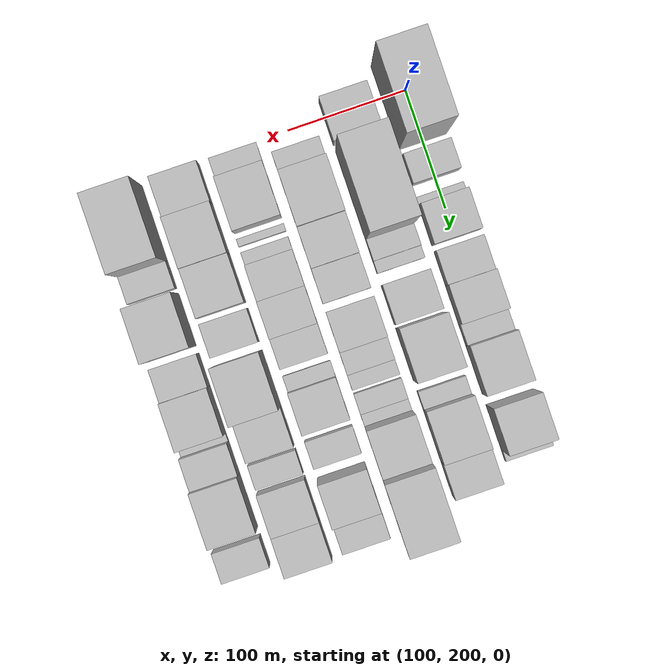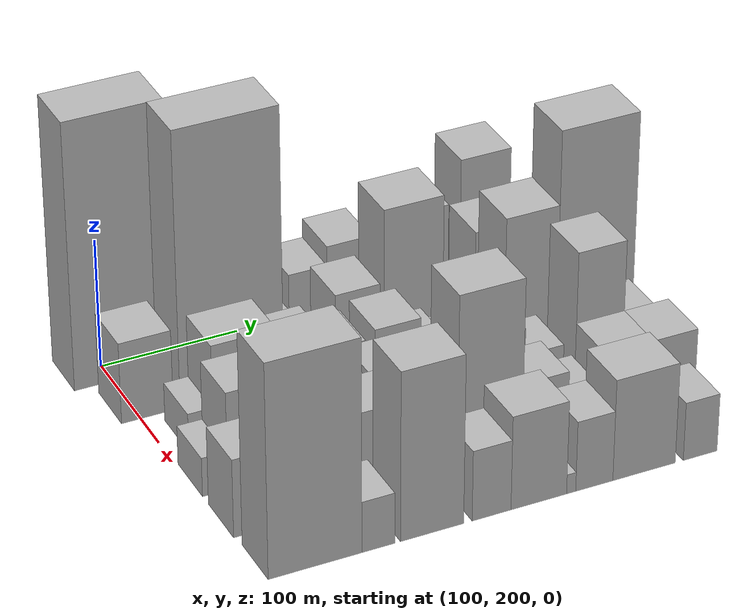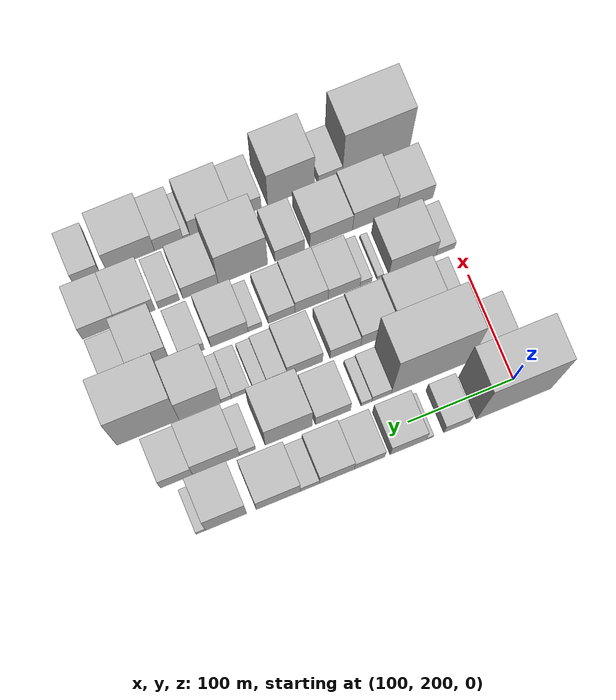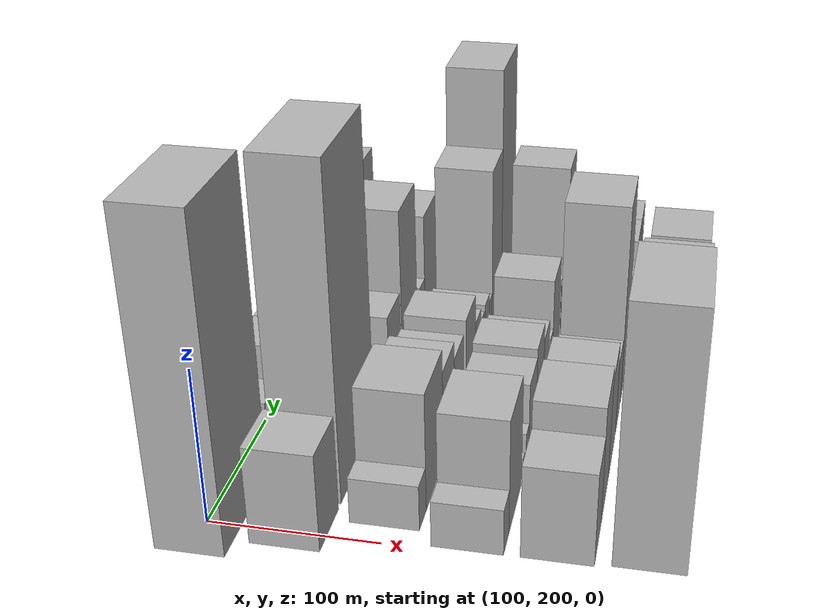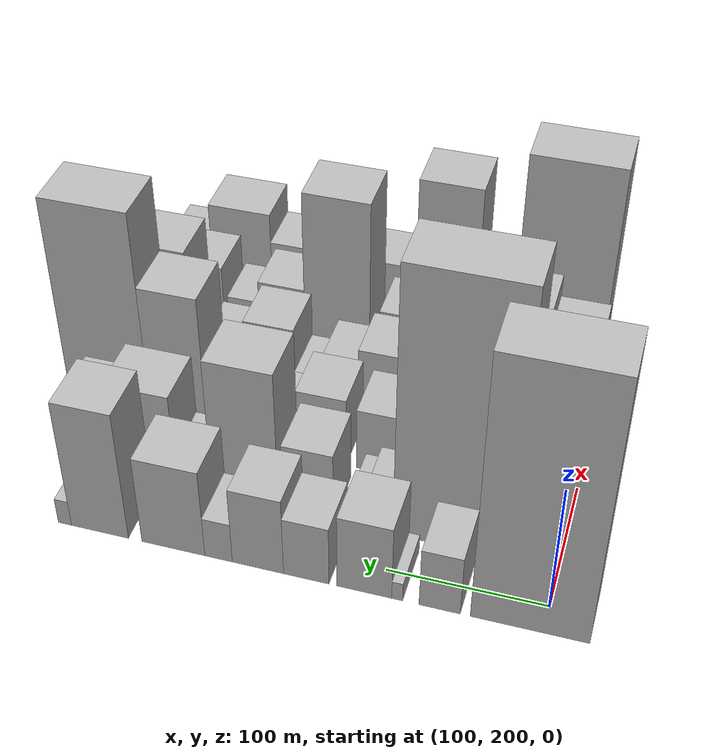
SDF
<sdf version="1.6">
 <world name="default">
  <model name="building_29">
   <static>1</static>
   <pose>100.0000 208.2416 0 0.000000 0.000000 0.000000</pose>
   <link name="link">
    <pose>0 0 103.50 0 0 0</pose>
    <collision name="collision"><geometry><box><size>40.0000 70.6594 207.0000</size></box></geometry></collision>
    <visual name="visual">
     <cast_shadows>0</cast_shadows>
     <geometry><box><size>40.0000 70.6594 207.0000</size></box></geometry>
     <material>
      <script>
       <uri>model://HANNAS_wall/materials/scripts</uri>
       <uri>model://HANNAS_wall/materials/textures</uri>
       <name>vrc/HANNAS_wall</name>
      </script>
     </material>
    </visual>
   </link>
  </model>
  <model name="building_30">
   <static>1</static>
   <pose>100.0000 262.0798 0 0.000000 0.000000 0.000000</pose>
   <link name="link">
    <pose>0 0 24.00 0 0 0</pose>
    <collision name="collision"><geometry><box><size>40.0000 25.0170 48.0000</size></box></geometry></collision>
    <visual name="visual">
     <cast_shadows>0</cast_shadows>
     <geometry><box><size>40.0000 25.0170 48.0000</size></box></geometry>
     <material>
      <script>
       <uri>model://HANNAS_wall/materials/scripts</uri>
       <uri>model://HANNAS_wall/materials/textures</uri>
       <name>vrc/HANNAS_wall</name>
      </script>
     </material>
    </visual>
   </link>
  </model>
  <model name="building_31">
   <static>1</static>
   <pose>100.0000 287.9482 0 0.000000 0.000000 0.000000</pose>
   <link name="link">
    <pose>0 0 7.50 0 0 0</pose>
    <collision name="collision"><geometry><box><size>40.0000 6.7198 15.0000</size></box></geometry></collision>
    <visual name="visual">
     <cast_shadows>0</cast_shadows>
     <geometry><box><size>40.0000 6.7198 15.0000</size></box></geometry>
     <material>
      <script>
       <uri>model://HANNAS_wall/materials/scripts</uri>
       <uri>model://HANNAS_wall/materials/textures</uri>
       <name>vrc/HANNAS_wall</name>
      </script>
     </material>
    </visual>
   </link>
  </model>
  <model name="building_32">
   <static>1</static>
   <pose>100.0000 308.2810 0 0.000000 0.000000 0.000000</pose>
   <link name="link">
    <pose>0 0 30.00 0 0 0</pose>
    <collision name="collision"><geometry><box><size>40.0000 33.9458 60.0000</size></box></geometry></collision>
    <visual name="visual">
     <cast_shadows>0</cast_shadows>
     <geometry><box><size>40.0000 33.9458 60.0000</size></box></geometry>
     <material>
      <script>
       <uri>model://HANNAS_wall/materials/scripts</uri>
       <uri>model://HANNAS_wall/materials/textures</uri>
       <name>vrc/HANNAS_wall</name>
      </script>
     </material>
    </visual>
   </link>
  </model>
  <model name="building_33">
   <static>1</static>
   <pose>100.0000 344.5933 0 0.000000 0.000000 0.000000</pose>
   <link name="link">
    <pose>0 0 24.00 0 0 0</pose>
    <collision name="collision"><geometry><box><size>40.0000 28.6788 48.0000</size></box></geometry></collision>
    <visual name="visual">
     <cast_shadows>0</cast_shadows>
     <geometry><box><size>40.0000 28.6788 48.0000</size></box></geometry>
     <material>
      <script>
       <uri>model://HANNAS_wall/materials/scripts</uri>
       <uri>model://HANNAS_wall/materials/textures</uri>
       <name>vrc/HANNAS_wall</name>
      </script>
     </material>
    </visual>
   </link>
  </model>
  <model name="building_34">
   <static>1</static>
   <pose>100.0000 375.3645 0 0.000000 0.000000 0.000000</pose>
   <link name="link">
    <pose>0 0 31.50 0 0 0</pose>
    <collision name="collision"><geometry><box><size>40.0000 32.8637 63.0000</size></box></geometry></collision>
    <visual name="visual">
     <cast_shadows>0</cast_shadows>
     <geometry><box><size>40.0000 32.8637 63.0000</size></box></geometry>
     <material>
      <script>
       <uri>model://HANNAS_wall/materials/scripts</uri>
       <uri>model://HANNAS_wall/materials/textures</uri>
       <name>vrc/HANNAS_wall</name>
      </script>
     </material>
    </visual>
   </link>
  </model>
  <model name="building_35">
   <static>1</static>
   <pose>100.0000 400.6702 0 0.000000 0.000000 0.000000</pose>
   <link name="link">
    <pose>0 0 16.50 0 0 0</pose>
    <collision name="collision"><geometry><box><size>40.0000 17.7477 33.0000</size></box></geometry></collision>
    <visual name="visual">
     <cast_shadows>0</cast_shadows>
     <geometry><box><size>40.0000 17.7477 33.0000</size></box></geometry>
     <material>
      <script>
       <uri>model://HANNAS_wall/materials/scripts</uri>
       <uri>model://HANNAS_wall/materials/textures</uri>
       <name>vrc/HANNAS_wall</name>
      </script>
     </material>
    </visual>
   </link>
  </model>
  <model name="building_36">
   <static>1</static>
   <pose>100.0000 430.2554 0 0.000000 0.000000 0.000000</pose>
   <link name="link">
    <pose>0 0 36.00 0 0 0</pose>
    <collision name="collision"><geometry><box><size>40.0000 41.4226 72.0000</size></box></geometry></collision>
    <visual name="visual">
     <cast_shadows>0</cast_shadows>
     <geometry><box><size>40.0000 41.4226 72.0000</size></box></geometry>
     <material>
      <script>
       <uri>model://HANNAS_wall/materials/scripts</uri>
       <uri>model://HANNAS_wall/materials/textures</uri>
       <name>vrc/HANNAS_wall</name>
      </script>
     </material>
    </visual>
   </link>
  </model>
  <model name="building_37">
   <static>1</static>
   <pose>100.0000 479.1177 0 0.000000 0.000000 0.000000</pose>
   <link name="link">
    <pose>0 0 52.50 0 0 0</pose>
    <collision name="collision"><geometry><box><size>40.0000 38.3021 105.0000</size></box></geometry></collision>
    <visual name="visual">
     <cast_shadows>0</cast_shadows>
     <geometry><box><size>40.0000 38.3021 105.0000</size></box></geometry>
     <material>
      <script>
       <uri>model://HANNAS_wall/materials/scripts</uri>
       <uri>model://HANNAS_wall/materials/textures</uri>
       <name>vrc/HANNAS_wall</name>
      </script>
     </material>
    </visual>
   </link>
  </model>
  <model name="building_38">
   <static>1</static>
   <pose>100.0000 502.7300 0 0.000000 0.000000 0.000000</pose>
   <link name="link">
    <pose>0 0 10.50 0 0 0</pose>
    <collision name="collision"><geometry><box><size>40.0000 8.9223 21.0000</size></box></geometry></collision>
    <visual name="visual">
     <cast_shadows>0</cast_shadows>
     <geometry><box><size>40.0000 8.9223 21.0000</size></box></geometry>
     <material>
      <script>
       <uri>model://HANNAS_wall/materials/scripts</uri>
       <uri>model://HANNAS_wall/materials/textures</uri>
       <name>vrc/HANNAS_wall</name>
      </script>
     </material>
    </visual>
   </link>
  </model>
  <model name="building_72">
   <static>1</static>
   <pose>149.0000 205.1506 0 0.000000 0.000000 0.000000</pose>
   <link name="link">
    <pose>0 0 31.50 0 0 0</pose>
    <collision name="collision"><geometry><box><size>40.0000 36.9311 63.0000</size></box></geometry></collision>
    <visual name="visual">
     <cast_shadows>0</cast_shadows>
     <geometry><box><size>40.0000 36.9311 63.0000</size></box></geometry>
     <material>
      <script>
       <uri>model://HANNAS_wall/materials/scripts</uri>
       <uri>model://HANNAS_wall/materials/textures</uri>
       <name>vrc/HANNAS_wall</name>
      </script>
     </material>
    </visual>
   </link>
  </model>
  <model name="building_73">
   <static>1</static>
   <pose>149.0000 266.2312 0 0.000000 0.000000 0.000000</pose>
   <link name="link">
    <pose>0 0 106.50 0 0 0</pose>
    <collision name="collision"><geometry><box><size>40.0000 75.2303 213.0000</size></box></geometry></collision>
    <visual name="visual">
     <cast_shadows>0</cast_shadows>
     <geometry><box><size>40.0000 75.2303 213.0000</size></box></geometry>
     <material>
      <script>
       <uri>model://HANNAS_wall/materials/scripts</uri>
       <uri>model://HANNAS_wall/materials/textures</uri>
       <name>vrc/HANNAS_wall</name>
      </script>
     </material>
    </visual>
   </link>
  </model>
  <model name="building_74">
   <static>1</static>
   <pose>149.0000 312.9829 0 0.000000 0.000000 0.000000</pose>
   <link name="link">
    <pose>0 0 16.50 0 0 0</pose>
    <collision name="collision"><geometry><box><size>40.0000 18.2730 33.0000</size></box></geometry></collision>
    <visual name="visual">
     <cast_shadows>0</cast_shadows>
     <geometry><box><size>40.0000 18.2730 33.0000</size></box></geometry>
     <material>
      <script>
       <uri>model://HANNAS_wall/materials/scripts</uri>
       <uri>model://HANNAS_wall/materials/textures</uri>
       <name>vrc/HANNAS_wall</name>
      </script>
     </material>
    </visual>
   </link>
  </model>
  <model name="building_75">
   <static>1</static>
   <pose>149.0000 327.2028 0 0.000000 0.000000 0.000000</pose>
   <link name="link">
    <pose>0 0 12.00 0 0 0</pose>
    <collision name="collision"><geometry><box><size>40.0000 10.1668 24.0000</size></box></geometry></collision>
    <visual name="visual">
     <cast_shadows>0</cast_shadows>
     <geometry><box><size>40.0000 10.1668 24.0000</size></box></geometry>
     <material>
      <script>
       <uri>model://HANNAS_wall/materials/scripts</uri>
       <uri>model://HANNAS_wall/materials/textures</uri>
       <name>vrc/HANNAS_wall</name>
      </script>
     </material>
    </visual>
   </link>
  </model>
  <model name="building_76">
   <static>1</static>
   <pose>149.0000 358.7865 0 0.000000 0.000000 0.000000</pose>
   <link name="link">
    <pose>0 0 28.50 0 0 0</pose>
    <collision name="collision"><geometry><box><size>40.0000 33.0005 57.0000</size></box></geometry></collision>
    <visual name="visual">
     <cast_shadows>0</cast_shadows>
     <geometry><box><size>40.0000 33.0005 57.0000</size></box></geometry>
     <material>
      <script>
       <uri>model://HANNAS_wall/materials/scripts</uri>
       <uri>model://HANNAS_wall/materials/textures</uri>
       <name>vrc/HANNAS_wall</name>
      </script>
     </material>
    </visual>
   </link>
  </model>
  <model name="building_77">
   <static>1</static>
   <pose>149.0000 400.4650 0 0.000000 0.000000 0.000000</pose>
   <link name="link">
    <pose>0 0 57.00 0 0 0</pose>
    <collision name="collision"><geometry><box><size>40.0000 44.3565 114.0000</size></box></geometry></collision>
    <visual name="visual">
     <cast_shadows>0</cast_shadows>
     <geometry><box><size>40.0000 44.3565 114.0000</size></box></geometry>
     <material>
      <script>
       <uri>model://HANNAS_wall/materials/scripts</uri>
       <uri>model://HANNAS_wall/materials/textures</uri>
       <name>vrc/HANNAS_wall</name>
      </script>
     </material>
    </visual>
   </link>
  </model>
  <model name="building_78">
   <static>1</static>
   <pose>149.0000 439.2201 0 0.000000 0.000000 0.000000</pose>
   <link name="link">
    <pose>0 0 15.00 0 0 0</pose>
    <collision name="collision"><geometry><box><size>40.0000 15.1538 30.0000</size></box></geometry></collision>
    <visual name="visual">
     <cast_shadows>0</cast_shadows>
     <geometry><box><size>40.0000 15.1538 30.0000</size></box></geometry>
     <material>
      <script>
       <uri>model://HANNAS_wall/materials/scripts</uri>
       <uri>model://HANNAS_wall/materials/textures</uri>
       <name>vrc/HANNAS_wall</name>
      </script>
     </material>
    </visual>
   </link>
  </model>
  <model name="building_79">
   <static>1</static>
   <pose>149.0000 468.7493 0 0.000000 0.000000 0.000000</pose>
   <link name="link">
    <pose>0 0 39.00 0 0 0</pose>
    <collision name="collision"><geometry><box><size>40.0000 43.9047 78.0000</size></box></geometry></collision>
    <visual name="visual">
     <cast_shadows>0</cast_shadows>
     <geometry><box><size>40.0000 43.9047 78.0000</size></box></geometry>
     <material>
      <script>
       <uri>model://HANNAS_wall/materials/scripts</uri>
       <uri>model://HANNAS_wall/materials/textures</uri>
       <name>vrc/HANNAS_wall</name>
      </script>
     </material>
    </visual>
   </link>
  </model>
  <model name="building_80">
   <static>1</static>
   <pose>149.0000 505.7298 0 0.000000 0.000000 0.000000</pose>
   <link name="link">
    <pose>0 0 30.00 0 0 0</pose>
    <collision name="collision"><geometry><box><size>40.0000 30.0564 60.0000</size></box></geometry></collision>
    <visual name="visual">
     <cast_shadows>0</cast_shadows>
     <geometry><box><size>40.0000 30.0564 60.0000</size></box></geometry>
     <material>
      <script>
       <uri>model://HANNAS_wall/materials/scripts</uri>
       <uri>model://HANNAS_wall/materials/textures</uri>
       <name>vrc/HANNAS_wall</name>
      </script>
     </material>
    </visual>
   </link>
  </model>
  <model name="building_125">
   <static>1</static>
   <pose>198.0000 222.5570 0 0.000000 0.000000 0.000000</pose>
   <link name="link">
    <pose>0 0 15.00 0 0 0</pose>
    <collision name="collision"><geometry><box><size>40.0000 17.4681 30.0000</size></box></geometry></collision>
    <visual name="visual">
     <cast_shadows>0</cast_shadows>
     <geometry><box><size>40.0000 17.4681 30.0000</size></box></geometry>
     <material>
      <script>
       <uri>model://HANNAS_wall/materials/scripts</uri>
       <uri>model://HANNAS_wall/materials/textures</uri>
       <name>vrc/HANNAS_wall</name>
      </script>
     </material>
    </visual>
   </link>
  </model>
  <model name="building_126">
   <static>1</static>
   <pose>198.0000 254.6107 0 0.000000 0.000000 0.000000</pose>
   <link name="link">
    <pose>0 0 39.00 0 0 0</pose>
    <collision name="collision"><geometry><box><size>40.0000 46.6393 78.0000</size></box></geometry></collision>
    <visual name="visual">
     <cast_shadows>0</cast_shadows>
     <geometry><box><size>40.0000 46.6393 78.0000</size></box></geometry>
     <material>
      <script>
       <uri>model://HANNAS_wall/materials/scripts</uri>
       <uri>model://HANNAS_wall/materials/textures</uri>
       <name>vrc/HANNAS_wall</name>
      </script>
     </material>
    </visual>
   </link>
  </model>
  <model name="building_127">
   <static>1</static>
   <pose>198.0000 295.1061 0 0.000000 0.000000 0.000000</pose>
   <link name="link">
    <pose>0 0 31.50 0 0 0</pose>
    <collision name="collision"><geometry><box><size>40.0000 34.3516 63.0000</size></box></geometry></collision>
    <visual name="visual">
     <cast_shadows>0</cast_shadows>
     <geometry><box><size>40.0000 34.3516 63.0000</size></box></geometry>
     <material>
      <script>
       <uri>model://HANNAS_wall/materials/scripts</uri>
       <uri>model://HANNAS_wall/materials/textures</uri>
       <name>vrc/HANNAS_wall</name>
      </script>
     </material>
    </visual>
   </link>
  </model>
  <model name="building_128">
   <static>1</static>
   <pose>198.0000 326.7949 0 0.000000 0.000000 0.000000</pose>
   <link name="link">
    <pose>0 0 25.50 0 0 0</pose>
    <collision name="collision"><geometry><box><size>40.0000 29.0258 51.0000</size></box></geometry></collision>
    <visual name="visual">
     <cast_shadows>0</cast_shadows>
     <geometry><box><size>40.0000 29.0258 51.0000</size></box></geometry>
     <material>
      <script>
       <uri>model://HANNAS_wall/materials/scripts</uri>
       <uri>model://HANNAS_wall/materials/textures</uri>
       <name>vrc/HANNAS_wall</name>
      </script>
     </material>
    </visual>
   </link>
  </model>
  <model name="building_129">
   <static>1</static>
   <pose>198.0000 365.1813 0 0.000000 0.000000 0.000000</pose>
   <link name="link">
    <pose>0 0 28.50 0 0 0</pose>
    <collision name="collision"><geometry><box><size>40.0000 33.7472 57.0000</size></box></geometry></collision>
    <visual name="visual">
     <cast_shadows>0</cast_shadows>
     <geometry><box><size>40.0000 33.7472 57.0000</size></box></geometry>
     <material>
      <script>
       <uri>model://HANNAS_wall/materials/scripts</uri>
       <uri>model://HANNAS_wall/materials/textures</uri>
       <name>vrc/HANNAS_wall</name>
      </script>
     </material>
    </visual>
   </link>
  </model>
  <model name="building_130">
   <static>1</static>
   <pose>198.0000 391.6179 0 0.000000 0.000000 0.000000</pose>
   <link name="link">
    <pose>0 0 18.00 0 0 0</pose>
    <collision name="collision"><geometry><box><size>40.0000 19.1260 36.0000</size></box></geometry></collision>
    <visual name="visual">
     <cast_shadows>0</cast_shadows>
     <geometry><box><size>40.0000 19.1260 36.0000</size></box></geometry>
     <material>
      <script>
       <uri>model://HANNAS_wall/materials/scripts</uri>
       <uri>model://HANNAS_wall/materials/textures</uri>
       <name>vrc/HANNAS_wall</name>
      </script>
     </material>
    </visual>
   </link>
  </model>
  <model name="building_131">
   <static>1</static>
   <pose>198.0000 407.5493 0 0.000000 0.000000 0.000000</pose>
   <link name="link">
    <pose>0 0 13.50 0 0 0</pose>
    <collision name="collision"><geometry><box><size>40.0000 12.7368 27.0000</size></box></geometry></collision>
    <visual name="visual">
     <cast_shadows>0</cast_shadows>
     <geometry><box><size>40.0000 12.7368 27.0000</size></box></geometry>
     <material>
      <script>
       <uri>model://HANNAS_wall/materials/scripts</uri>
       <uri>model://HANNAS_wall/materials/textures</uri>
       <name>vrc/HANNAS_wall</name>
      </script>
     </material>
    </visual>
   </link>
  </model>
  <model name="building_132">
   <static>1</static>
   <pose>198.0000 425.5918 0 0.000000 0.000000 0.000000</pose>
   <link name="link">
    <pose>0 0 15.00 0 0 0</pose>
    <collision name="collision"><geometry><box><size>40.0000 17.3482 30.0000</size></box></geometry></collision>
    <visual name="visual">
     <cast_shadows>0</cast_shadows>
     <geometry><box><size>40.0000 17.3482 30.0000</size></box></geometry>
     <material>
      <script>
       <uri>model://HANNAS_wall/materials/scripts</uri>
       <uri>model://HANNAS_wall/materials/textures</uri>
       <name>vrc/HANNAS_wall</name>
      </script>
     </material>
    </visual>
   </link>
  </model>
  <model name="building_133">
   <static>1</static>
   <pose>198.0000 439.2208 0 0.000000 0.000000 0.000000</pose>
   <link name="link">
    <pose>0 0 12.00 0 0 0</pose>
    <collision name="collision"><geometry><box><size>40.0000 9.9097 24.0000</size></box></geometry></collision>
    <visual name="visual">
     <cast_shadows>0</cast_shadows>
     <geometry><box><size>40.0000 9.9097 24.0000</size></box></geometry>
     <material>
      <script>
       <uri>model://HANNAS_wall/materials/scripts</uri>
       <uri>model://HANNAS_wall/materials/textures</uri>
       <name>vrc/HANNAS_wall</name>
      </script>
     </material>
    </visual>
   </link>
  </model>
  <model name="building_134">
   <static>1</static>
   <pose>198.0000 463.9686 0 0.000000 0.000000 0.000000</pose>
   <link name="link">
    <pose>0 0 58.50 0 0 0</pose>
    <collision name="collision"><geometry><box><size>40.0000 39.5859 117.0000</size></box></geometry></collision>
    <visual name="visual">
     <cast_shadows>0</cast_shadows>
     <geometry><box><size>40.0000 39.5859 117.0000</size></box></geometry>
     <material>
      <script>
       <uri>model://HANNAS_wall/materials/scripts</uri>
       <uri>model://HANNAS_wall/materials/textures</uri>
       <name>vrc/HANNAS_wall</name>
      </script>
     </material>
    </visual>
   </link>
  </model>
  <model name="building_135">
   <static>1</static>
   <pose>198.0000 512.8940 0 0.000000 0.000000 0.000000</pose>
   <link name="link">
    <pose>0 0 87.00 0 0 0</pose>
    <collision name="collision"><geometry><box><size>40.0000 58.2649 174.0000</size></box></geometry></collision>
    <visual name="visual">
     <cast_shadows>0</cast_shadows>
     <geometry><box><size>40.0000 58.2649 174.0000</size></box></geometry>
     <material>
      <script>
       <uri>model://HANNAS_wall/materials/scripts</uri>
       <uri>model://HANNAS_wall/materials/textures</uri>
       <name>vrc/HANNAS_wall</name>
      </script>
     </material>
    </visual>
   </link>
  </model>
  <model name="building_177">
   <static>1</static>
   <pose>247.0000 211.2641 0 0.000000 0.000000 0.000000</pose>
   <link name="link">
    <pose>0 0 15.00 0 0 0</pose>
    <collision name="collision"><geometry><box><size>40.0000 17.7262 30.0000</size></box></geometry></collision>
    <visual name="visual">
     <cast_shadows>0</cast_shadows>
     <geometry><box><size>40.0000 17.7262 30.0000</size></box></geometry>
     <material>
      <script>
       <uri>model://HANNAS_wall/materials/scripts</uri>
       <uri>model://HANNAS_wall/materials/textures</uri>
       <name>vrc/HANNAS_wall</name>
      </script>
     </material>
    </visual>
   </link>
  </model>
  <model name="building_178">
   <static>1</static>
   <pose>247.0000 242.5564 0 0.000000 0.000000 0.000000</pose>
   <link name="link">
    <pose>0 0 37.50 0 0 0</pose>
    <collision name="collision"><geometry><box><size>40.0000 44.8584 75.0000</size></box></geometry></collision>
    <visual name="visual">
     <cast_shadows>0</cast_shadows>
     <geometry><box><size>40.0000 44.8584 75.0000</size></box></geometry>
     <material>
      <script>
       <uri>model://HANNAS_wall/materials/scripts</uri>
       <uri>model://HANNAS_wall/materials/textures</uri>
       <name>vrc/HANNAS_wall</name>
      </script>
     </material>
    </visual>
   </link>
  </model>
  <model name="building_179">
   <static>1</static>
   <pose>247.0000 273.2107 0 0.000000 0.000000 0.000000</pose>
   <link name="link">
    <pose>0 0 7.50 0 0 0</pose>
    <collision name="collision"><geometry><box><size>40.0000 6.4503 15.0000</size></box></geometry></collision>
    <visual name="visual">
     <cast_shadows>0</cast_shadows>
     <geometry><box><size>40.0000 6.4503 15.0000</size></box></geometry>
     <material>
      <script>
       <uri>model://HANNAS_wall/materials/scripts</uri>
       <uri>model://HANNAS_wall/materials/textures</uri>
       <name>vrc/HANNAS_wall</name>
      </script>
     </material>
    </visual>
   </link>
  </model>
  <model name="building_180">
   <static>1</static>
   <pose>247.0000 287.0451 0 0.000000 0.000000 0.000000</pose>
   <link name="link">
    <pose>0 0 12.00 0 0 0</pose>
    <collision name="collision"><geometry><box><size>40.0000 11.2184 24.0000</size></box></geometry></collision>
    <visual name="visual">
     <cast_shadows>0</cast_shadows>
     <geometry><box><size>40.0000 11.2184 24.0000</size></box></geometry>
     <material>
      <script>
       <uri>model://HANNAS_wall/materials/scripts</uri>
       <uri>model://HANNAS_wall/materials/textures</uri>
       <name>vrc/HANNAS_wall</name>
      </script>
     </material>
    </visual>
   </link>
  </model>
  <model name="building_181">
   <static>1</static>
   <pose>247.0000 307.8679 0 0.000000 0.000000 0.000000</pose>
   <link name="link">
    <pose>0 0 25.50 0 0 0</pose>
    <collision name="collision"><geometry><box><size>40.0000 30.4273 51.0000</size></box></geometry></collision>
    <visual name="visual">
     <cast_shadows>0</cast_shadows>
     <geometry><box><size>40.0000 30.4273 51.0000</size></box></geometry>
     <material>
      <script>
       <uri>model://HANNAS_wall/materials/scripts</uri>
       <uri>model://HANNAS_wall/materials/textures</uri>
       <name>vrc/HANNAS_wall</name>
      </script>
     </material>
    </visual>
   </link>
  </model>
  <model name="building_182">
   <static>1</static>
   <pose>247.0000 338.6921 0 0.000000 0.000000 0.000000</pose>
   <link name="link">
    <pose>0 0 28.50 0 0 0</pose>
    <collision name="collision"><geometry><box><size>40.0000 31.2211 57.0000</size></box></geometry></collision>
    <visual name="visual">
     <cast_shadows>0</cast_shadows>
     <geometry><box><size>40.0000 31.2211 57.0000</size></box></geometry>
     <material>
      <script>
       <uri>model://HANNAS_wall/materials/scripts</uri>
       <uri>model://HANNAS_wall/materials/textures</uri>
       <name>vrc/HANNAS_wall</name>
      </script>
     </material>
    </visual>
   </link>
  </model>
  <model name="building_183">
   <static>1</static>
   <pose>247.0000 366.9429 0 0.000000 0.000000 0.000000</pose>
   <link name="link">
    <pose>0 0 22.50 0 0 0</pose>
    <collision name="collision"><geometry><box><size>40.0000 25.2806 45.0000</size></box></geometry></collision>
    <visual name="visual">
     <cast_shadows>0</cast_shadows>
     <geometry><box><size>40.0000 25.2806 45.0000</size></box></geometry>
     <material>
      <script>
       <uri>model://HANNAS_wall/materials/scripts</uri>
       <uri>model://HANNAS_wall/materials/textures</uri>
       <name>vrc/HANNAS_wall</name>
      </script>
     </material>
    </visual>
   </link>
  </model>
  <model name="building_184">
   <static>1</static>
   <pose>247.0000 392.1977 0 0.000000 0.000000 0.000000</pose>
   <link name="link">
    <pose>0 0 13.50 0 0 0</pose>
    <collision name="collision"><geometry><box><size>40.0000 13.2289 27.0000</size></box></geometry></collision>
    <visual name="visual">
     <cast_shadows>0</cast_shadows>
     <geometry><box><size>40.0000 13.2289 27.0000</size></box></geometry>
     <material>
      <script>
       <uri>model://HANNAS_wall/materials/scripts</uri>
       <uri>model://HANNAS_wall/materials/textures</uri>
       <name>vrc/HANNAS_wall</name>
      </script>
     </material>
    </visual>
   </link>
  </model>
  <model name="building_185">
   <static>1</static>
   <pose>247.0000 416.4103 0 0.000000 0.000000 0.000000</pose>
   <link name="link">
    <pose>0 0 31.50 0 0 0</pose>
    <collision name="collision"><geometry><box><size>40.0000 35.1963 63.0000</size></box></geometry></collision>
    <visual name="visual">
     <cast_shadows>0</cast_shadows>
     <geometry><box><size>40.0000 35.1963 63.0000</size></box></geometry>
     <material>
      <script>
       <uri>model://HANNAS_wall/materials/scripts</uri>
       <uri>model://HANNAS_wall/materials/textures</uri>
       <name>vrc/HANNAS_wall</name>
      </script>
     </material>
    </visual>
   </link>
  </model>
  <model name="building_186">
   <static>1</static>
   <pose>247.0000 451.4331 0 0.000000 0.000000 0.000000</pose>
   <link name="link">
    <pose>0 0 21.00 0 0 0</pose>
    <collision name="collision"><geometry><box><size>40.0000 22.8493 42.0000</size></box></geometry></collision>
    <visual name="visual">
     <cast_shadows>0</cast_shadows>
     <geometry><box><size>40.0000 22.8493 42.0000</size></box></geometry>
     <material>
      <script>
       <uri>model://HANNAS_wall/materials/scripts</uri>
       <uri>model://HANNAS_wall/materials/textures</uri>
       <name>vrc/HANNAS_wall</name>
      </script>
     </material>
    </visual>
   </link>
  </model>
  <model name="building_187">
   <static>1</static>
   <pose>247.0000 489.7528 0 0.000000 0.000000 0.000000</pose>
   <link name="link">
    <pose>0 0 55.50 0 0 0</pose>
    <collision name="collision"><geometry><box><size>40.0000 35.7900 111.0000</size></box></geometry></collision>
    <visual name="visual">
     <cast_shadows>0</cast_shadows>
     <geometry><box><size>40.0000 35.7900 111.0000</size></box></geometry>
     <material>
      <script>
       <uri>model://HANNAS_wall/materials/scripts</uri>
       <uri>model://HANNAS_wall/materials/textures</uri>
       <name>vrc/HANNAS_wall</name>
      </script>
     </material>
    </visual>
   </link>
  </model>
  <model name="building_188">
   <static>1</static>
   <pose>247.0000 520.4513 0 0.000000 0.000000 0.000000</pose>
   <link name="link">
    <pose>0 0 25.50 0 0 0</pose>
    <collision name="collision"><geometry><box><size>40.0000 25.6071 51.0000</size></box></geometry></collision>
    <visual name="visual">
     <cast_shadows>0</cast_shadows>
     <geometry><box><size>40.0000 25.6071 51.0000</size></box></geometry>
     <material>
      <script>
       <uri>model://HANNAS_wall/materials/scripts</uri>
       <uri>model://HANNAS_wall/materials/textures</uri>
       <name>vrc/HANNAS_wall</name>
      </script>
     </material>
    </visual>
   </link>
  </model>
  <model name="building_230">
   <static>1</static>
   <pose>296.0000 219.7651 0 0.000000 0.000000 0.000000</pose>
   <link name="link">
    <pose>0 0 30.00 0 0 0</pose>
    <collision name="collision"><geometry><box><size>40.0000 34.2794 60.0000</size></box></geometry></collision>
    <visual name="visual">
     <cast_shadows>0</cast_shadows>
     <geometry><box><size>40.0000 34.2794 60.0000</size></box></geometry>
     <material>
      <script>
       <uri>model://HANNAS_wall/materials/scripts</uri>
       <uri>model://HANNAS_wall/materials/textures</uri>
       <name>vrc/HANNAS_wall</name>
      </script>
     </material>
    </visual>
   </link>
  </model>
  <model name="building_231">
   <static>1</static>
   <pose>296.0000 258.1542 0 0.000000 0.000000 0.000000</pose>
   <link name="link">
    <pose>0 0 39.00 0 0 0</pose>
    <collision name="collision"><geometry><box><size>40.0000 42.4990 78.0000</size></box></geometry></collision>
    <visual name="visual">
     <cast_shadows>0</cast_shadows>
     <geometry><box><size>40.0000 42.4990 78.0000</size></box></geometry>
     <material>
      <script>
       <uri>model://HANNAS_wall/materials/scripts</uri>
       <uri>model://HANNAS_wall/materials/textures</uri>
       <name>vrc/HANNAS_wall</name>
      </script>
     </material>
    </visual>
   </link>
  </model>
  <model name="building_232">
   <static>1</static>
   <pose>296.0000 299.7932 0 0.000000 0.000000 0.000000</pose>
   <link name="link">
    <pose>0 0 34.50 0 0 0</pose>
    <collision name="collision"><geometry><box><size>40.0000 40.7790 69.0000</size></box></geometry></collision>
    <visual name="visual">
     <cast_shadows>0</cast_shadows>
     <geometry><box><size>40.0000 40.7790 69.0000</size></box></geometry>
     <material>
      <script>
       <uri>model://HANNAS_wall/materials/scripts</uri>
       <uri>model://HANNAS_wall/materials/textures</uri>
       <name>vrc/HANNAS_wall</name>
      </script>
     </material>
    </visual>
   </link>
  </model>
  <model name="building_233">
   <static>1</static>
   <pose>296.0000 339.2226 0 0.000000 0.000000 0.000000</pose>
   <link name="link">
    <pose>0 0 25.50 0 0 0</pose>
    <collision name="collision"><geometry><box><size>40.0000 28.0798 51.0000</size></box></geometry></collision>
    <visual name="visual">
     <cast_shadows>0</cast_shadows>
     <geometry><box><size>40.0000 28.0798 51.0000</size></box></geometry>
     <material>
      <script>
       <uri>model://HANNAS_wall/materials/scripts</uri>
       <uri>model://HANNAS_wall/materials/textures</uri>
       <name>vrc/HANNAS_wall</name>
      </script>
     </material>
    </visual>
   </link>
  </model>
  <model name="building_234">
   <static>1</static>
   <pose>296.0000 383.6970 0 0.000000 0.000000 0.000000</pose>
   <link name="link">
    <pose>0 0 69.00 0 0 0</pose>
    <collision name="collision"><geometry><box><size>40.0000 46.8689 138.0000</size></box></geometry></collision>
    <visual name="visual">
     <cast_shadows>0</cast_shadows>
     <geometry><box><size>40.0000 46.8689 138.0000</size></box></geometry>
     <material>
      <script>
       <uri>model://HANNAS_wall/materials/scripts</uri>
       <uri>model://HANNAS_wall/materials/textures</uri>
       <name>vrc/HANNAS_wall</name>
      </script>
     </material>
    </visual>
   </link>
  </model>
  <model name="building_235">
   <static>1</static>
   <pose>296.0000 423.8439 0 0.000000 0.000000 0.000000</pose>
   <link name="link">
    <pose>0 0 28.50 0 0 0</pose>
    <collision name="collision"><geometry><box><size>40.0000 33.4250 57.0000</size></box></geometry></collision>
    <visual name="visual">
     <cast_shadows>0</cast_shadows>
     <geometry><box><size>40.0000 33.4250 57.0000</size></box></geometry>
     <material>
      <script>
       <uri>model://HANNAS_wall/materials/scripts</uri>
       <uri>model://HANNAS_wall/materials/textures</uri>
       <name>vrc/HANNAS_wall</name>
      </script>
     </material>
    </visual>
   </link>
  </model>
  <model name="building_236">
   <static>1</static>
   <pose>296.0000 453.6493 0 0.000000 0.000000 0.000000</pose>
   <link name="link">
    <pose>0 0 19.50 0 0 0</pose>
    <collision name="collision"><geometry><box><size>40.0000 20.1857 39.0000</size></box></geometry></collision>
    <visual name="visual">
     <cast_shadows>0</cast_shadows>
     <geometry><box><size>40.0000 20.1857 39.0000</size></box></geometry>
     <material>
      <script>
       <uri>model://HANNAS_wall/materials/scripts</uri>
       <uri>model://HANNAS_wall/materials/textures</uri>
       <name>vrc/HANNAS_wall</name>
      </script>
     </material>
    </visual>
   </link>
  </model>
  <model name="building_237">
   <static>1</static>
   <pose>296.0000 484.6021 0 0.000000 0.000000 0.000000</pose>
   <link name="link">
    <pose>0 0 31.50 0 0 0</pose>
    <collision name="collision"><geometry><box><size>40.0000 35.7199 63.0000</size></box></geometry></collision>
    <visual name="visual">
     <cast_shadows>0</cast_shadows>
     <geometry><box><size>40.0000 35.7199 63.0000</size></box></geometry>
     <material>
      <script>
       <uri>model://HANNAS_wall/materials/scripts</uri>
       <uri>model://HANNAS_wall/materials/textures</uri>
       <name>vrc/HANNAS_wall</name>
      </script>
     </material>
    </visual>
   </link>
  </model>
  <model name="building_238">
   <static>1</static>
   <pose>296.0000 518.9291 0 0.000000 0.000000 0.000000</pose>
   <link name="link">
    <pose>0 0 31.50 0 0 0</pose>
    <collision name="collision"><geometry><box><size>40.0000 32.9341 63.0000</size></box></geometry></collision>
    <visual name="visual">
     <cast_shadows>0</cast_shadows>
     <geometry><box><size>40.0000 32.9341 63.0000</size></box></geometry>
     <material>
      <script>
       <uri>model://HANNAS_wall/materials/scripts</uri>
       <uri>model://HANNAS_wall/materials/textures</uri>
       <name>vrc/HANNAS_wall</name>
      </script>
     </material>
    </visual>
   </link>
  </model>
  <model name="building_280">
   <static>1</static>
   <pose>345.0000 236.6832 0 0.000000 0.000000 0.000000</pose>
   <link name="link">
    <pose>0 0 81.00 0 0 0</pose>
    <collision name="collision"><geometry><box><size>40.0000 64.4327 162.0000</size></box></geometry></collision>
    <visual name="visual">
     <cast_shadows>0</cast_shadows>
     <geometry><box><size>40.0000 64.4327 162.0000</size></box></geometry>
     <material>
      <script>
       <uri>model://HANNAS_wall/materials/scripts</uri>
       <uri>model://HANNAS_wall/materials/textures</uri>
       <name>vrc/HANNAS_wall</name>
      </script>
     </material>
    </visual>
   </link>
  </model>
  <model name="building_281">
   <static>1</static>
   <pose>345.0000 280.3487 0 0.000000 0.000000 0.000000</pose>
   <link name="link">
    <pose>0 0 19.50 0 0 0</pose>
    <collision name="collision"><geometry><box><size>40.0000 22.8983 39.0000</size></box></geometry></collision>
    <visual name="visual">
     <cast_shadows>0</cast_shadows>
     <geometry><box><size>40.0000 22.8983 39.0000</size></box></geometry>
     <material>
      <script>
       <uri>model://HANNAS_wall/materials/scripts</uri>
       <uri>model://HANNAS_wall/materials/textures</uri>
       <name>vrc/HANNAS_wall</name>
      </script>
     </material>
    </visual>
   </link>
  </model>
  <model name="building_282">
   <static>1</static>
   <pose>345.0000 318.0507 0 0.000000 0.000000 0.000000</pose>
   <link name="link">
    <pose>0 0 64.50 0 0 0</pose>
    <collision name="collision"><geometry><box><size>40.0000 44.5057 129.0000</size></box></geometry></collision>
    <visual name="visual">
     <cast_shadows>0</cast_shadows>
     <geometry><box><size>40.0000 44.5057 129.0000</size></box></geometry>
     <material>
      <script>
       <uri>model://HANNAS_wall/materials/scripts</uri>
       <uri>model://HANNAS_wall/materials/textures</uri>
       <name>vrc/HANNAS_wall</name>
      </script>
     </material>
    </visual>
   </link>
  </model>
  <model name="building_283">
   <static>1</static>
   <pose>345.0000 360.1427 0 0.000000 0.000000 0.000000</pose>
   <link name="link">
    <pose>0 0 27.00 0 0 0</pose>
    <collision name="collision"><geometry><box><size>40.0000 27.6783 54.0000</size></box></geometry></collision>
    <visual name="visual">
     <cast_shadows>0</cast_shadows>
     <geometry><box><size>40.0000 27.6783 54.0000</size></box></geometry>
     <material>
      <script>
       <uri>model://HANNAS_wall/materials/scripts</uri>
       <uri>model://HANNAS_wall/materials/textures</uri>
       <name>vrc/HANNAS_wall</name>
      </script>
     </material>
    </visual>
   </link>
  </model>
  <model name="building_284">
   <static>1</static>
   <pose>345.0000 394.0191 0 0.000000 0.000000 0.000000</pose>
   <link name="link">
    <pose>0 0 36.00 0 0 0</pose>
    <collision name="collision"><geometry><box><size>40.0000 40.0744 72.0000</size></box></geometry></collision>
    <visual name="visual">
     <cast_shadows>0</cast_shadows>
     <geometry><box><size>40.0000 40.0744 72.0000</size></box></geometry>
     <material>
      <script>
       <uri>model://HANNAS_wall/materials/scripts</uri>
       <uri>model://HANNAS_wall/materials/textures</uri>
       <name>vrc/HANNAS_wall</name>
      </script>
     </material>
    </visual>
   </link>
  </model>
  <model name="building_285">
   <static>1</static>
   <pose>345.0000 417.3613 0 0.000000 0.000000 0.000000</pose>
   <link name="link">
    <pose>0 0 7.50 0 0 0</pose>
    <collision name="collision"><geometry><box><size>40.0000 6.6099 15.0000</size></box></geometry></collision>
    <visual name="visual">
     <cast_shadows>0</cast_shadows>
     <geometry><box><size>40.0000 6.6099 15.0000</size></box></geometry>
     <material>
      <script>
       <uri>model://HANNAS_wall/materials/scripts</uri>
       <uri>model://HANNAS_wall/materials/textures</uri>
       <name>vrc/HANNAS_wall</name>
      </script>
     </material>
    </visual>
   </link>
  </model>
  <model name="building_286">
   <static>1</static>
   <pose>345.0000 434.2152 0 0.000000 0.000000 0.000000</pose>
   <link name="link">
    <pose>0 0 27.00 0 0 0</pose>
    <collision name="collision"><geometry><box><size>40.0000 27.0979 54.0000</size></box></geometry></collision>
    <visual name="visual">
     <cast_shadows>0</cast_shadows>
     <geometry><box><size>40.0000 27.0979 54.0000</size></box></geometry>
     <material>
      <script>
       <uri>model://HANNAS_wall/materials/scripts</uri>
       <uri>model://HANNAS_wall/materials/textures</uri>
       <name>vrc/HANNAS_wall</name>
      </script>
     </material>
    </visual>
   </link>
  </model>
  <model name="building_287">
   <static>1</static>
   <pose>345.0000 470.7413 0 0.000000 0.000000 0.000000</pose>
   <link name="link">
    <pose>0 0 39.00 0 0 0</pose>
    <collision name="collision"><geometry><box><size>40.0000 45.9544 78.0000</size></box></geometry></collision>
    <visual name="visual">
     <cast_shadows>0</cast_shadows>
     <geometry><box><size>40.0000 45.9544 78.0000</size></box></geometry>
     <material>
      <script>
       <uri>model://HANNAS_wall/materials/scripts</uri>
       <uri>model://HANNAS_wall/materials/textures</uri>
       <name>vrc/HANNAS_wall</name>
      </script>
     </material>
    </visual>
   </link>
  </model>
  <model name="building_288">
   <static>1</static>
   <pose>345.0000 512.2914 0 0.000000 0.000000 0.000000</pose>
   <link name="link">
    <pose>0 0 22.50 0 0 0</pose>
    <collision name="collision"><geometry><box><size>40.0000 25.1457 45.0000</size></box></geometry></collision>
    <visual name="visual">
     <cast_shadows>0</cast_shadows>
     <geometry><box><size>40.0000 25.1457 45.0000</size></box></geometry>
     <material>
      <script>
       <uri>model://HANNAS_wall/materials/scripts</uri>
       <uri>model://HANNAS_wall/materials/textures</uri>
       <name>vrc/HANNAS_wall</name>
      </script>
     </material>
    </visual>
   </link>
  </model>
 </world>
</sdf>
